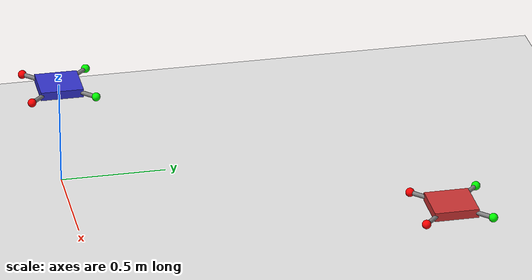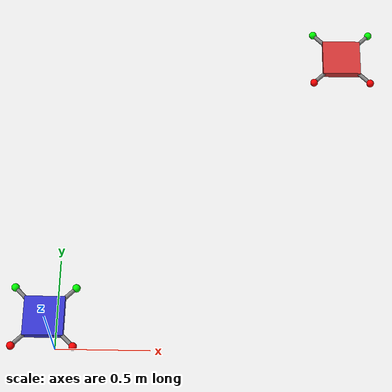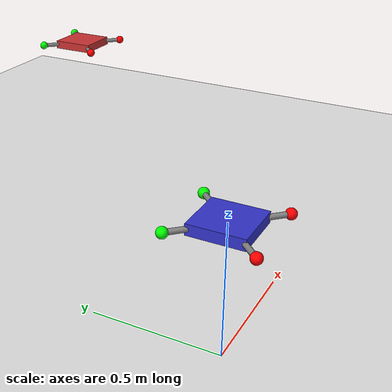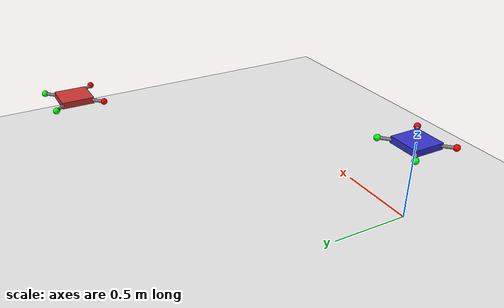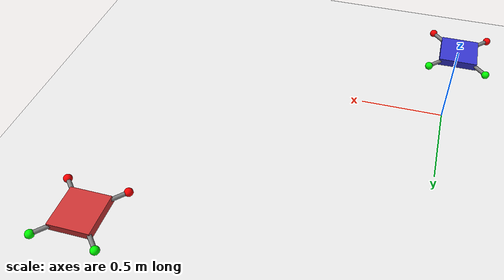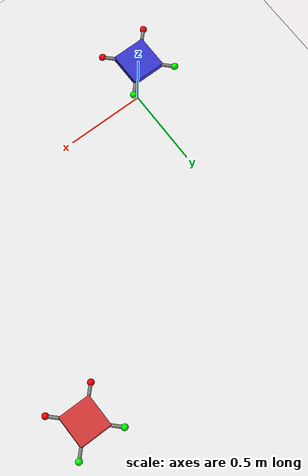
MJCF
<mujoco model="pursuit_evasion">
  <option timestep="0.005" gravity="0 0 -9.81" integrator="RK4"/>

  <worldbody>
    <light diffuse=".6 .6 .6" pos="0 0 3" dir="0 0 -1"/>
    <geom type="plane" size="5 5 0.1" rgba=".9 .9 .9 1"/>

    <!-- Drone 1: the pursuer (your trained RL policy) -->
    <body name="drone1" pos="0 0 0.5">
      <freejoint name="root1"/>
      <inertial pos="0 0 0" mass="0.5" diaginertia="0.0023 0.0023 0.004"/>
      <geom type="box" size="0.1 0.1 0.02" rgba="0.2 0.2 0.8 1" mass="0"/>

      <site name="d1_rotor_fr" pos=" 0.15 -0.15 0" size="0.02" rgba="1 0 0 1"/>
      <site name="d1_rotor_fl" pos=" 0.15  0.15 0" size="0.02" rgba="0 1 0 1"/>
      <site name="d1_rotor_bl" pos="-0.15  0.15 0" size="0.02" rgba="0 1 0 1"/>
      <site name="d1_rotor_br" pos="-0.15 -0.15 0" size="0.02" rgba="1 0 0 1"/>

      <geom type="capsule" fromto="0 0 0  0.15 -0.15 0" size="0.01" mass="0.02"/>
      <geom type="capsule" fromto="0 0 0  0.15  0.15 0" size="0.01" mass="0.02"/>
      <geom type="capsule" fromto="0 0 0 -0.15  0.15 0" size="0.01" mass="0.02"/>
      <geom type="capsule" fromto="0 0 0 -0.15 -0.15 0" size="0.01" mass="0.02"/>
    </body>

    <!-- Drone 2: the intruder (scripted, non-learning) -->
    <body name="drone2" pos="1.5 1.5 0.5">
      <freejoint name="root2"/>
      <inertial pos="0 0 0" mass="0.5" diaginertia="0.0023 0.0023 0.004"/>
      <geom type="box" size="0.1 0.1 0.02" rgba="0.8 0.2 0.2 1" mass="0"/>

      <site name="d2_rotor_fr" pos=" 0.15 -0.15 0" size="0.02" rgba="1 0 0 1"/>
      <site name="d2_rotor_fl" pos=" 0.15  0.15 0" size="0.02" rgba="0 1 0 1"/>
      <site name="d2_rotor_bl" pos="-0.15  0.15 0" size="0.02" rgba="0 1 0 1"/>
      <site name="d2_rotor_br" pos="-0.15 -0.15 0" size="0.02" rgba="1 0 0 1"/>

      <geom type="capsule" fromto="0 0 0  0.15 -0.15 0" size="0.01" mass="0.02"/>
      <geom type="capsule" fromto="0 0 0  0.15  0.15 0" size="0.01" mass="0.02"/>
      <geom type="capsule" fromto="0 0 0 -0.15  0.15 0" size="0.01" mass="0.02"/>
      <geom type="capsule" fromto="0 0 0 -0.15 -0.15 0" size="0.01" mass="0.02"/>
    </body>
  </worldbody>

  <actuator>
    <motor site="d1_rotor_fr" gear="0 0 1 0 0  0.02" ctrlrange="0 5" name="d1_m_fr"/>
    <motor site="d1_rotor_fl" gear="0 0 1 0 0 -0.02" ctrlrange="0 5" name="d1_m_fl"/>
    <motor site="d1_rotor_bl" gear="0 0 1 0 0  0.02" ctrlrange="0 5" name="d1_m_bl"/>
    <motor site="d1_rotor_br" gear="0 0 1 0 0 -0.02" ctrlrange="0 5" name="d1_m_br"/>

    <motor site="d2_rotor_fr" gear="0 0 1 0 0  0.02" ctrlrange="0 5" name="d2_m_fr"/>
    <motor site="d2_rotor_fl" gear="0 0 1 0 0 -0.02" ctrlrange="0 5" name="d2_m_fl"/>
    <motor site="d2_rotor_bl" gear="0 0 1 0 0  0.02" ctrlrange="0 5" name="d2_m_bl"/>
    <motor site="d2_rotor_br" gear="0 0 1 0 0 -0.02" ctrlrange="0 5" name="d2_m_br"/>
  </actuator>
</mujoco>
